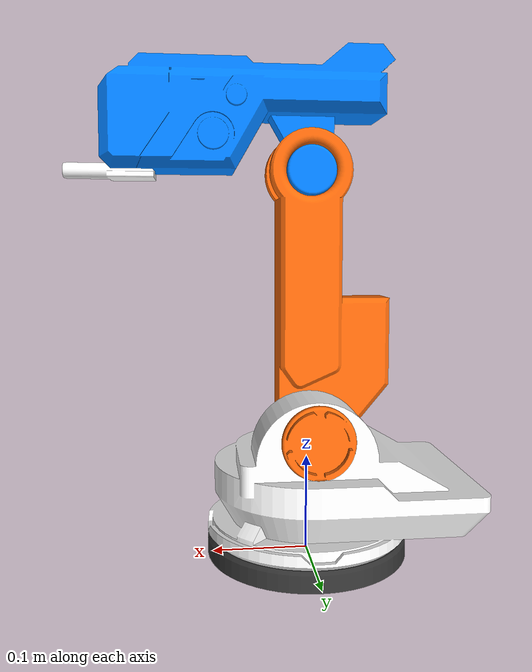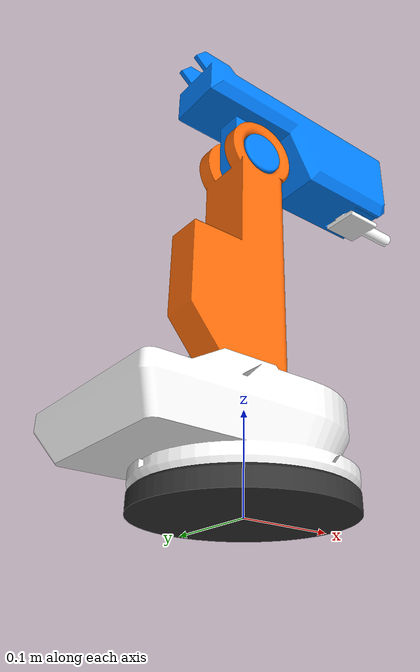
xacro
<?xml version="1.0"?>
<robot xmlns:xacro="http://www.ros.org/wiki/xacro"  name="robot">

  <!-- This is an example of a URDF. -->
  <!-- As we move through the file, new things to note will be pointed out. -->
  <!-- It's not meant an example of GOOD design, but an example of some of the various features of URDF/xacro. -->

  <!-- This will include all the contents of example_include.xacro first. Go check it out! -->
  <xacro:include filename="cocoax_include.xacro" />
  <xacro:include filename="cocoax_gazebo.xacro" />

  <!-- This first link called "world" is empty -->
  <link name="world"></link>

  <!-- A simple fixed joint from our empty world link, to our base. -->
  <!-- The base origin is offset from the world origin. -->
  <joint name="world_joint" type="fixed">
      <origin xyz="0 0 0" rpy="0 0 0"/>
      <parent link="world"/>
      <child link="link_0"/>
  </joint>

  <link name="link_0">
    <visual>
      <origin xyz="0 0 0" rpy="0 0 0"/>
      <geometry>
        <mesh filename="file:///$(find cocoax_description)/meshes/link_0.stl"/>
      </geometry>
      <material name="Grey"/>
    </visual>

    <collision>
        <origin xyz="0 0 0" rpy="0 0 0"/>
        <contact_coefficients mu="0" kp="1000.0" kd="1.0"/>
        <geometry>
            <mesh filename="file:///$(find cocoax_description)/meshes/link_0.stl"/>
        </geometry>
    </collision>

    <inertial>
      <origin xyz="${link_0_c_offset_x} ${link_0_c_offset_y} ${link_0_c_offset_z}" rpy="0 0 0"/>
      <mass value="0.689781" />
      <inertia ixx="0.001916" ixy="0.000000" ixz="0.000000" iyy="0.001916" iyz="0.000000" izz="0.003787" />
    </inertial>
  </link>

  <joint name="joint_rev_0_1" type="revolute">
    <parent link="link_0"/>
    <child link="link_1"/>
    <origin rpy="0 0 0" xyz="0 0 0.136"/>
    <axis xyz="0 0 1"/>
    <limit lower="-6.28" upper="6.28" effort="1.0" velocity="1.0"/>
  </joint>

  <link name="link_1">
    <visual>
      <origin xyz="0 0 0" rpy="0 0 0"/>
      <geometry>
        <mesh filename="file:///$(find cocoax_description)/meshes/link_1.stl"/>
      </geometry>
      <material name="White"/>
    </visual>

    <collision>
      <origin xyz="0 0 0" rpy="0 0 0"/>
      <contact_coefficients mu="0" kp="1000.0" kd="1.0"/>
      <geometry>
          <mesh filename="file:///$(find cocoax_description)/meshes/link_1.stl"/>
      </geometry>
    </collision>

    <inertial>
      <origin xyz="${link_1_c_offset_x} ${link_1_c_offset_y} ${link_1_c_offset_z}" rpy="0 0 0"/>
      <mass value="3.584649" />
      <inertia ixx="0.012069" ixy="0.000340" ixz="0.000161" iyy="0.018044" iyz="0.000626" izz="0.024030" />
    </inertial>
  </link>

  <joint name="joint_rev_1_2" type="revolute">
    <parent link="link_1"/>
    <child link="link_2"/>
    <origin rpy="1.5708 -1.5708 0" xyz="0 0 0"/>
    <axis xyz="0 0 1"/>
    <limit lower="-0.523" upper="0.523" effort="1.0" velocity="1.0"/>
  </joint>

  <link name="link_2">
    <visual>
      <origin xyz="0 0 0.0" rpy="0 0 0"/>
      <geometry>
        <mesh filename="file:///$(find cocoax_description)/meshes/link_2.stl"/>
      </geometry>
      <material name="Orange"/>
    </visual>

    <collision>
      <origin xyz="0 0 0" rpy="0 0 0"/>
      <contact_coefficients mu="0" kp="1000.0" kd="1.0"/>
      <geometry>
          <mesh filename="file:///$(find cocoax_description)/meshes/link_2.stl"/>
      </geometry>
    </collision>

    <inertial>
      <origin xyz="${link_2_c_offset_x} ${link_2_c_offset_y} ${link_2_c_offset_z}" rpy="0 0 0"/>
      <mass value="1.674836" />
      <inertia ixx="0.002594" ixy="-0.000469" ixz="0.000898" iyy="0.012791" iyz="0.000258" izz="0.012890" />
    </inertial>
  </link>

  <joint name="joint_rev_2_3" type="revolute">
    <parent link="link_2"/>
    <child link="link_3"/>
    <origin rpy="0 0 0" xyz="0.26179 0 0"/>
    <axis xyz="0 0 1"/>
    <limit lower="-1.0472" upper="1.5708" effort="1.0" velocity="1.0"/>
  </joint>

  <link name="link_3">
    <visual>
      <origin xyz="0 0 0" rpy="0 0 0"/>
      <geometry>
        <mesh filename="file:///$(find cocoax_description)/meshes/link_3.stl"/>
      </geometry>
      <material name="Blue"/>
    </visual>

    <collision>
      <origin xyz="0 0 0" rpy="0 0 0"/>
      <contact_coefficients mu="0" kp="1000.0" kd="1.0"/>
      <geometry>
          <mesh filename="file:///$(find cocoax_description)/meshes/link_3.stl"/>
      </geometry>
    </collision>

    <inertial>
      <origin xyz="${link_3_c_offset_x} ${link_3_c_offset_y} ${link_3_c_offset_z}" rpy="0 0 0"/>
      <mass value="1.783530" />
      <inertia ixx="0.010684" ixy="0.000433" ixz="-0.000003" iyy="0.002620" iyz="-0.000004" izz="0.011479" />
    </inertial>
  </link>

  <joint name="joint_eff" type="fixed">
    <parent link="link_3"/>
    <child link="end_effector"/>
    <origin rpy="-1.5708 0 -1.5708" xyz="0 -0.245 0"/>
    <axis xyz="0 0 1"/>
  </joint>

  <link name="end_effector">
    <visual>
      <origin xyz="0 0 0" rpy="0 0 0"/>
      <geometry>
        <mesh filename="file:///$(find cocoax_description)/meshes/end_effector.stl"/>
      </geometry>
      <material name="White"/>
    </visual>
  </link>
</robot>

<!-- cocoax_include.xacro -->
<robot xmlns:xacro="http://www.ros.org/wiki/xacro" >

    <!-- This file is not a robot in and of itself, it just contains some useful tags that could be included in any robot -->

    <!-- Specify some colours -->

    <!-- add more codes -->
    <material name="Grey">
        <color rgba="0.2 0.2 0.2 1.0"/>
    </material>

    <material name="Orange">
        <color rgba="1.0 0.423529411765 0.0392156862745 1.0"/>
    </material>

    <material name="Blue">
        <color rgba="0.0 0.5 1.0 1.0"/>
    </material>

    <material name="Red">
    <color rgba="1.0 0.0 0.0 1.0"/>
    </material>

    <material name="Black">
        <color rgba="0.0 0.0 0.0 0.6"/>
    </material>

    <material name="White">
        <color rgba="1.0 1.0 1.0 1.0"/>
    </material>

    <material name="DarkBlue">
        <color rgba="0.0 0.0 0.3764 0.6"/>
    </material>

    <xacro:property name="link_0_c_offset_x" value="0.0"/>
    <xacro:property name="link_0_c_offset_y" value="0.0"/>
    <xacro:property name="link_0_c_offset_z" value="0.009962"/>

    <xacro:property name="link_1_c_offset_x" value="-0.027383"/>
    <xacro:property name="link_1_c_offset_y" value="0.002656"/>
    <xacro:property name="link_1_c_offset_z" value="-0.067605"/>

    <xacro:property name="link_2_c_offset_x" value="0.099891"/>
    <xacro:property name="link_2_c_offset_y" value="0.010935"/>
    <xacro:property name="link_2_c_offset_z" value="-0.003837"/>

    <xacro:property name="link_3_c_offset_x" value="0.054699"/>
    <xacro:property name="link_3_c_offset_y" value="-0.077878"/>
    <xacro:property name="link_3_c_offset_z" value="0.000125"/>

    <!-- Specify some standard inertial calculations https://en.wikipedia.org/wiki/List_of_moments_of_inertia -->
    <!-- These make use of xacro's mathematical functionality -->

    <xacro:macro name="inertial_sphere" params="mass radius *origin">
        <inertial>
            <xacro:insert_block name="origin"/>
            <mass value="${mass}" />
            <inertia ixx="${(2/5) * mass * (radius*radius)}" ixy="0.0" ixz="0.0"
                    iyy="${(2/5) * mass * (radius*radius)}" iyz="0.0"
                    izz="${(2/5) * mass * (radius*radius)}" />
        </inertial>
    </xacro:macro>

    <xacro:macro name="inertial_box" params="mass x y z *origin">
        <inertial>
            <xacro:insert_block name="origin"/>
            <mass value="${mass}" />
            <inertia ixx="${(1/12) * mass * (y*y+z*z)}" ixy="0.0" ixz="0.0"
                    iyy="${(1/12) * mass * (x*x+z*z)}" iyz="0.0"
                    izz="${(1/12) * mass * (x*x+y*y)}" />
        </inertial>
    </xacro:macro>

    <xacro:macro name="inertial_cylinder" params="mass length radius *origin">
        <inertial>
            <xacro:insert_block name="origin"/>
            <mass value="${mass}" />
            <inertia ixx="${(1/12) * mass * (3*radius*radius + length*length)}" ixy="0.0" ixz="0.0"
                    iyy="${(1/12) * mass * (3*radius*radius + length*length)}" iyz="0.0"
                    izz="${(1/2) * mass * (radius*radius)}" />
        </inertial>
    </xacro:macro>

</robot>
